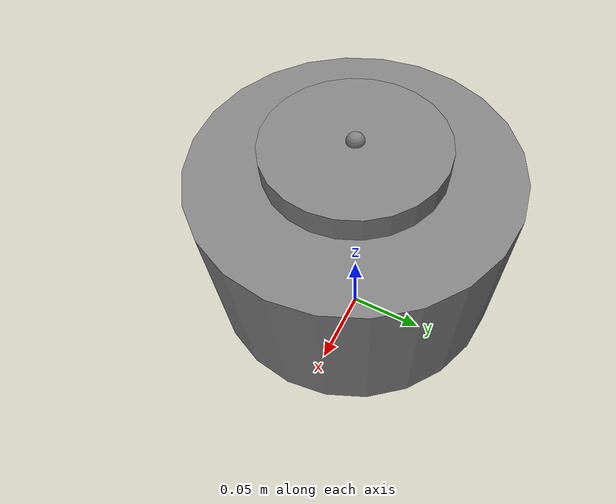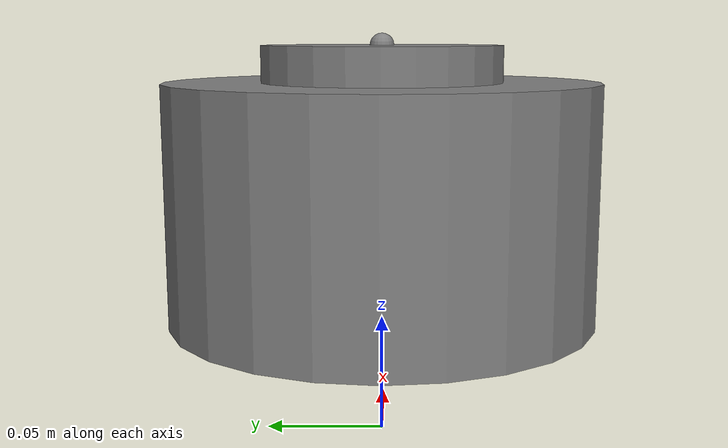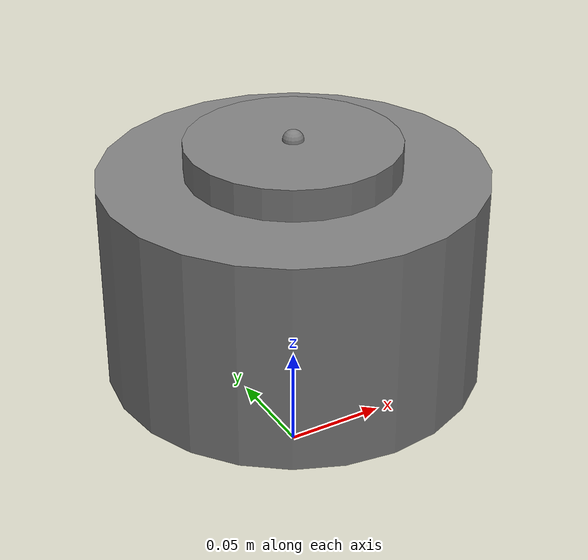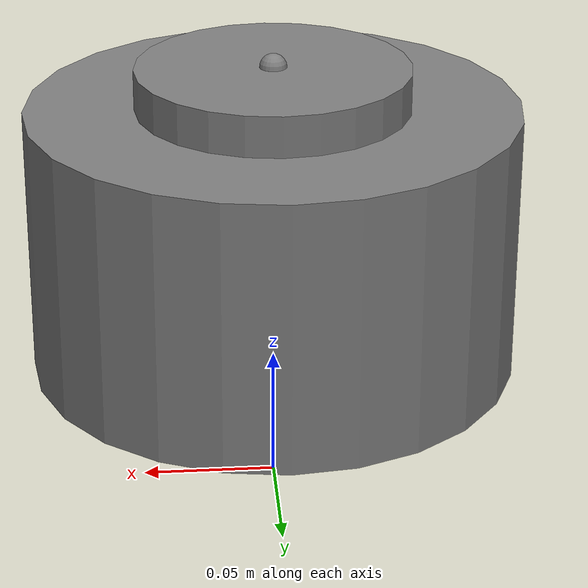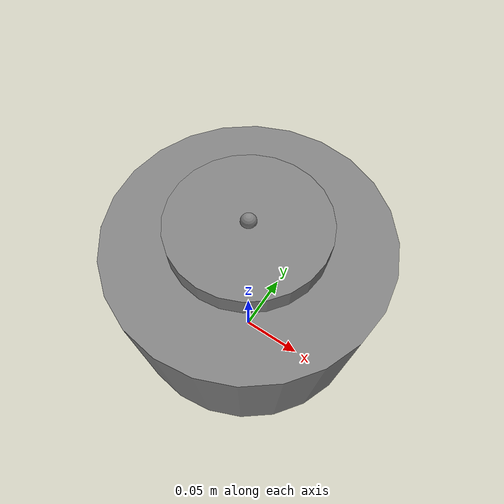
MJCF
<mujoco model="pid_tune_tool">
    <compiler angle="radian"/>
    <option timestep="0.001"/>
    <default>
        <joint armature="0.01"/>
        <geom contype="0" conaffinity="0"/>
    </default>

    <worldbody>
        <body name="base" pos="0 0 0.1">
            <geom name="base" type="cylinder" size="0.09 0.05" mass="1.5"/>
            <site name="base_imu" pos="0 0 0.03"/>
            <joint name="rotor" type="hinge" axis="0 0 1" pos="0 0 0.05"/>
            <body name="rotor" pos="0 0 0.05">
                <geom name="rotor" type="cylinder" size="0.05 0.015" mass="0.25"/>
                <site name="top_imu" pos="0 0 0.015"/>
            </body>
        </body>
    </worldbody>

    <actuator>
        <motor name="rotor" joint="rotor" ctrlrange="-3 3" ctrllimited="true"/>
    </actuator>

    <sensor>
        <gyro name="base_gyro" site="base_imu"/>
        <accelerometer name="base_acc" site="base_imu"/>
        <gyro name="top_gyro" site="top_imu"/>
        <accelerometer name="top_acc" site="top_imu"/>
    </sensor>
</mujoco>
